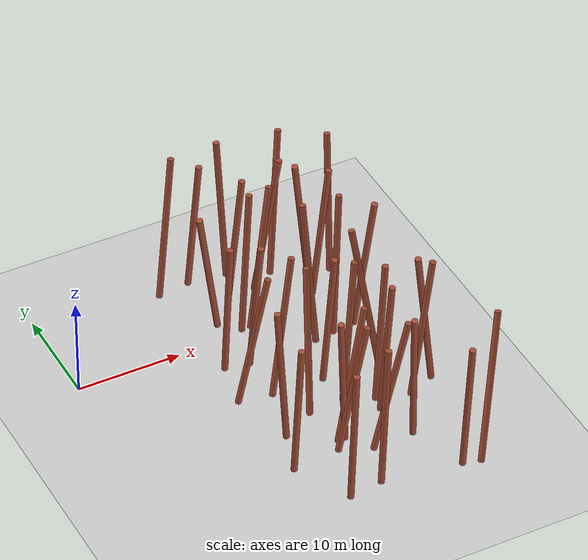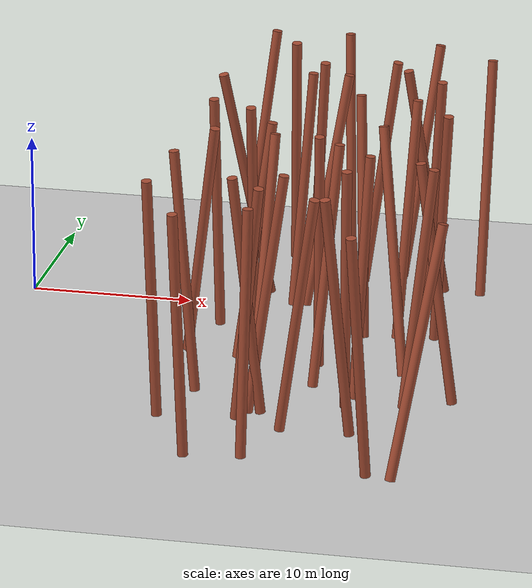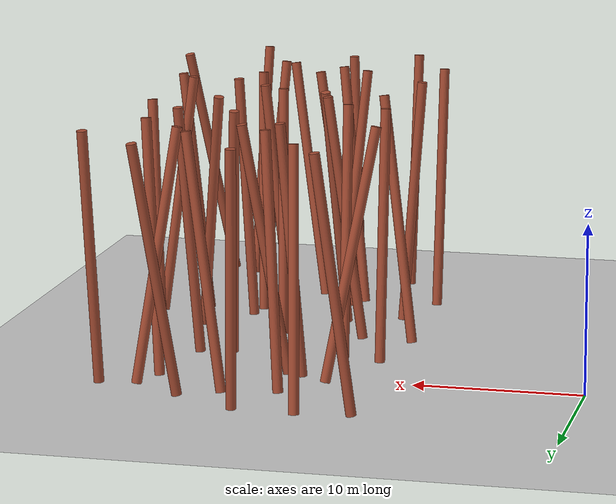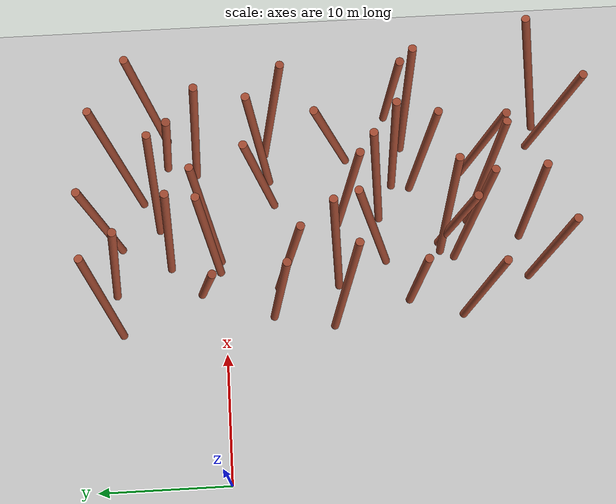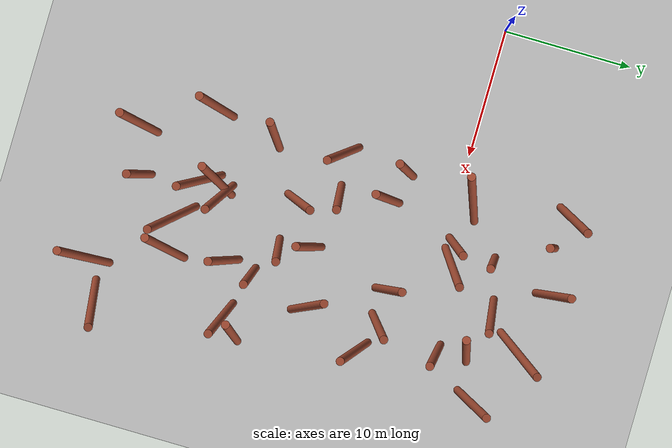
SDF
<sdf version="1.5">
 <world name="default">
  <include><uri>model://sun</uri></include>
  <include><uri>model://ground_plane</uri></include>
  <include><uri>model://asphalt_plane</uri><pose>0 0 -0.000001 0 0 0</pose></include>
  <model name="unit_cylinder_73">
   <pose>12.09966 -18.93497 7.70000 0.09308 -0.00720 0.00000</pose>
   <gravity>0 0 0</gravity>
   <link name="link">
    <inertial>
     <mass>100</mass>
     <inertia><ixx>20</ixx><ixy>0</ixy><ixz>0</ixz><iyy>20</iyy><iyz>0</iyz><izz>20</izz></inertia>
    </inertial>
    <collision name="collision">
     <geometry><cylinder><radius>0.300</radius><length>15.000</length></cylinder></geometry>
    </collision>
    <visual name="visual">
     <geometry><cylinder><radius>0.300</radius><length>15.000</length></cylinder></geometry>
     <material>
      <script><name>Gazebo/Bricks</name><uri>file://media/materials/scripts/gazebo.material</uri></script>
     </material>
    </visual>
    <kinematic>1</kinematic>
   </link>
   <static>0</static>
   <plugin name="dynamic_obstacle_motion_73" filename="libobstaclePathPlugin.so">
    <motion_type>proximity_linear</motion_type>
    <direction>0.674254416 0.738499142 0.000000000</direction>
    <velocity>0.658738524</velocity>
    <activation_distance>20.000000000</activation_distance>
    <activation_model>iris</activation_model>
    <orientation>false</orientation>
    <marker_enabled>true</marker_enabled>
    <marker_id>73</marker_id>
    <marker_radius>0.300000000</marker_radius>
    <marker_height>15.000000000</marker_height>
    <marker_rate>20.0</marker_rate>
    <marker_topic>/uav_simulator/dynamic_obstacles</marker_topic>
    <marker_frame>map</marker_frame>
   </plugin>
  </model>
  <model name="unit_cylinder_74">
   <pose>12.97167 -14.31017 7.70000 0.01713 -0.07211 0.00000</pose>
   <gravity>0 0 0</gravity>
   <link name="link">
    <inertial>
     <mass>100</mass>
     <inertia><ixx>20</ixx><ixy>0</ixy><ixz>0</ixz><iyy>20</iyy><iyz>0</iyz><izz>20</izz></inertia>
    </inertial>
    <collision name="collision">
     <geometry><cylinder><radius>0.300</radius><length>15.000</length></cylinder></geometry>
    </collision>
    <visual name="visual">
     <geometry><cylinder><radius>0.300</radius><length>15.000</length></cylinder></geometry>
     <material>
      <script><name>Gazebo/Bricks</name><uri>file://media/materials/scripts/gazebo.material</uri></script>
     </material>
    </visual>
   </link>
   <static>1</static>
  </model>
  <model name="unit_cylinder_76">
   <pose>12.79724 -9.11853 7.70000 0.10804 0.14224 0.00000</pose>
   <gravity>0 0 0</gravity>
   <link name="link">
    <inertial>
     <mass>100</mass>
     <inertia><ixx>20</ixx><ixy>0</ixy><ixz>0</ixz><iyy>20</iyy><iyz>0</iyz><izz>20</izz></inertia>
    </inertial>
    <collision name="collision">
     <geometry><cylinder><radius>0.300</radius><length>15.000</length></cylinder></geometry>
    </collision>
    <visual name="visual">
     <geometry><cylinder><radius>0.300</radius><length>15.000</length></cylinder></geometry>
     <material>
      <script><name>Gazebo/Bricks</name><uri>file://media/materials/scripts/gazebo.material</uri></script>
     </material>
    </visual>
    <kinematic>1</kinematic>
   </link>
   <static>0</static>
   <plugin name="dynamic_obstacle_motion_76" filename="libobstaclePathPlugin.so">
    <motion_type>proximity_linear</motion_type>
    <direction>-0.961778324 -0.273829244 0.000000000</direction>
    <velocity>0.290994414</velocity>
    <activation_distance>20.000000000</activation_distance>
    <activation_model>iris</activation_model>
    <orientation>false</orientation>
    <marker_enabled>true</marker_enabled>
    <marker_id>76</marker_id>
    <marker_radius>0.300000000</marker_radius>
    <marker_height>15.000000000</marker_height>
    <marker_rate>20.0</marker_rate>
    <marker_topic>/uav_simulator/dynamic_obstacles</marker_topic>
    <marker_frame>map</marker_frame>
   </plugin>
  </model>
  <model name="unit_cylinder_77">
   <pose>12.71789 -4.36831 7.70000 0.08819 -0.00153 0.00000</pose>
   <gravity>0 0 0</gravity>
   <link name="link">
    <inertial>
     <mass>100</mass>
     <inertia><ixx>20</ixx><ixy>0</ixy><ixz>0</ixz><iyy>20</iyy><iyz>0</iyz><izz>20</izz></inertia>
    </inertial>
    <collision name="collision">
     <geometry><cylinder><radius>0.300</radius><length>15.000</length></cylinder></geometry>
    </collision>
    <visual name="visual">
     <geometry><cylinder><radius>0.300</radius><length>15.000</length></cylinder></geometry>
     <material>
      <script><name>Gazebo/Bricks</name><uri>file://media/materials/scripts/gazebo.material</uri></script>
     </material>
    </visual>
    <kinematic>1</kinematic>
   </link>
   <static>0</static>
   <plugin name="dynamic_obstacle_motion_77" filename="libobstaclePathPlugin.so">
    <motion_type>proximity_linear</motion_type>
    <direction>0.446322698 0.894872085 0.000000000</direction>
    <velocity>0.592073534</velocity>
    <activation_distance>20.000000000</activation_distance>
    <activation_model>iris</activation_model>
    <orientation>false</orientation>
    <marker_enabled>true</marker_enabled>
    <marker_id>77</marker_id>
    <marker_radius>0.300000000</marker_radius>
    <marker_height>15.000000000</marker_height>
    <marker_rate>20.0</marker_rate>
    <marker_topic>/uav_simulator/dynamic_obstacles</marker_topic>
    <marker_frame>map</marker_frame>
   </plugin>
  </model>
  <model name="unit_cylinder_78">
   <pose>13.46900 0.86037 7.70000 0.12000 -0.17320 0.00000</pose>
   <gravity>0 0 0</gravity>
   <link name="link">
    <inertial>
     <mass>100</mass>
     <inertia><ixx>20</ixx><ixy>0</ixy><ixz>0</ixz><iyy>20</iyy><iyz>0</iyz><izz>20</izz></inertia>
    </inertial>
    <collision name="collision">
     <geometry><cylinder><radius>0.300</radius><length>15.000</length></cylinder></geometry>
    </collision>
    <visual name="visual">
     <geometry><cylinder><radius>0.300</radius><length>15.000</length></cylinder></geometry>
     <material>
      <script><name>Gazebo/Bricks</name><uri>file://media/materials/scripts/gazebo.material</uri></script>
     </material>
    </visual>
    <kinematic>1</kinematic>
   </link>
   <static>0</static>
   <plugin name="dynamic_obstacle_motion_78" filename="libobstaclePathPlugin.so">
    <motion_type>proximity_linear</motion_type>
    <direction>0.493598340 0.869689990 0.000000000</direction>
    <velocity>0.750630534</velocity>
    <activation_distance>20.000000000</activation_distance>
    <activation_model>iris</activation_model>
    <orientation>false</orientation>
    <marker_enabled>true</marker_enabled>
    <marker_id>78</marker_id>
    <marker_radius>0.300000000</marker_radius>
    <marker_height>15.000000000</marker_height>
    <marker_rate>20.0</marker_rate>
    <marker_topic>/uav_simulator/dynamic_obstacles</marker_topic>
    <marker_frame>map</marker_frame>
   </plugin>
  </model>
  <model name="unit_cylinder_80">
   <pose>12.77865 8.30049 7.70000 -0.06051 0.12447 0.00000</pose>
   <gravity>0 0 0</gravity>
   <link name="link">
    <inertial>
     <mass>100</mass>
     <inertia><ixx>20</ixx><ixy>0</ixy><ixz>0</ixz><iyy>20</iyy><iyz>0</iyz><izz>20</izz></inertia>
    </inertial>
    <collision name="collision">
     <geometry><cylinder><radius>0.300</radius><length>15.000</length></cylinder></geometry>
    </collision>
    <visual name="visual">
     <geometry><cylinder><radius>0.300</radius><length>15.000</length></cylinder></geometry>
     <material>
      <script><name>Gazebo/Bricks</name><uri>file://media/materials/scripts/gazebo.material</uri></script>
     </material>
    </visual>
    <kinematic>1</kinematic>
   </link>
   <static>0</static>
   <plugin name="dynamic_obstacle_motion_80" filename="libobstaclePathPlugin.so">
    <motion_type>proximity_linear</motion_type>
    <direction>-0.624898909 0.780705677 0.000000000</direction>
    <velocity>1.326812384</velocity>
    <activation_distance>20.000000000</activation_distance>
    <activation_model>iris</activation_model>
    <orientation>false</orientation>
    <marker_enabled>true</marker_enabled>
    <marker_id>80</marker_id>
    <marker_radius>0.300000000</marker_radius>
    <marker_height>15.000000000</marker_height>
    <marker_rate>20.0</marker_rate>
    <marker_topic>/uav_simulator/dynamic_obstacles</marker_topic>
    <marker_frame>map</marker_frame>
   </plugin>
  </model>
  <model name="unit_cylinder_87">
   <pose>14.80580 -24.05270 7.70000 0.07194 -0.01697 0.00000</pose>
   <gravity>0 0 0</gravity>
   <link name="link">
    <inertial>
     <mass>100</mass>
     <inertia><ixx>20</ixx><ixy>0</ixy><ixz>0</ixz><iyy>20</iyy><iyz>0</iyz><izz>20</izz></inertia>
    </inertial>
    <collision name="collision">
     <geometry><cylinder><radius>0.300</radius><length>15.000</length></cylinder></geometry>
    </collision>
    <visual name="visual">
     <geometry><cylinder><radius>0.300</radius><length>15.000</length></cylinder></geometry>
     <material>
      <script><name>Gazebo/Bricks</name><uri>file://media/materials/scripts/gazebo.material</uri></script>
     </material>
    </visual>
    <kinematic>1</kinematic>
   </link>
   <static>0</static>
   <plugin name="dynamic_obstacle_motion_87" filename="libobstaclePathPlugin.so">
    <motion_type>proximity_linear</motion_type>
    <direction>0.529764277 0.848144923 0.000000000</direction>
    <velocity>0.647044066</velocity>
    <activation_distance>20.000000000</activation_distance>
    <activation_model>iris</activation_model>
    <orientation>false</orientation>
    <marker_enabled>true</marker_enabled>
    <marker_id>87</marker_id>
    <marker_radius>0.300000000</marker_radius>
    <marker_height>15.000000000</marker_height>
    <marker_rate>20.0</marker_rate>
    <marker_topic>/uav_simulator/dynamic_obstacles</marker_topic>
    <marker_frame>map</marker_frame>
   </plugin>
  </model>
  <model name="unit_cylinder_88">
   <pose>17.60694 -18.64400 7.70000 0.10522 0.11654 0.00000</pose>
   <gravity>0 0 0</gravity>
   <link name="link">
    <inertial>
     <mass>100</mass>
     <inertia><ixx>20</ixx><ixy>0</ixy><ixz>0</ixz><iyy>20</iyy><iyz>0</iyz><izz>20</izz></inertia>
    </inertial>
    <collision name="collision">
     <geometry><cylinder><radius>0.300</radius><length>15.000</length></cylinder></geometry>
    </collision>
    <visual name="visual">
     <geometry><cylinder><radius>0.300</radius><length>15.000</length></cylinder></geometry>
     <material>
      <script><name>Gazebo/Bricks</name><uri>file://media/materials/scripts/gazebo.material</uri></script>
     </material>
    </visual>
    <kinematic>1</kinematic>
   </link>
   <static>0</static>
   <plugin name="dynamic_obstacle_motion_88" filename="libobstaclePathPlugin.so">
    <motion_type>proximity_linear</motion_type>
    <direction>0.181890316 0.983318826 0.000000000</direction>
    <velocity>0.464193147</velocity>
    <activation_distance>20.000000000</activation_distance>
    <activation_model>iris</activation_model>
    <orientation>false</orientation>
    <marker_enabled>true</marker_enabled>
    <marker_id>88</marker_id>
    <marker_radius>0.300000000</marker_radius>
    <marker_height>15.000000000</marker_height>
    <marker_rate>20.0</marker_rate>
    <marker_topic>/uav_simulator/dynamic_obstacles</marker_topic>
    <marker_frame>map</marker_frame>
   </plugin>
  </model>
  <model name="unit_cylinder_89">
   <pose>17.32578 -17.40756 7.70000 0.09221 -0.08966 0.00000</pose>
   <gravity>0 0 0</gravity>
   <link name="link">
    <inertial>
     <mass>100</mass>
     <inertia><ixx>20</ixx><ixy>0</ixy><ixz>0</ixz><iyy>20</iyy><iyz>0</iyz><izz>20</izz></inertia>
    </inertial>
    <collision name="collision">
     <geometry><cylinder><radius>0.300</radius><length>15.000</length></cylinder></geometry>
    </collision>
    <visual name="visual">
     <geometry><cylinder><radius>0.300</radius><length>15.000</length></cylinder></geometry>
     <material>
      <script><name>Gazebo/Bricks</name><uri>file://media/materials/scripts/gazebo.material</uri></script>
     </material>
    </visual>
    <kinematic>1</kinematic>
   </link>
   <static>0</static>
   <plugin name="dynamic_obstacle_motion_89" filename="libobstaclePathPlugin.so">
    <motion_type>proximity_linear</motion_type>
    <direction>-0.979266794 -0.202574793 0.000000000</direction>
    <velocity>1.444949437</velocity>
    <activation_distance>20.000000000</activation_distance>
    <activation_model>iris</activation_model>
    <orientation>false</orientation>
    <marker_enabled>true</marker_enabled>
    <marker_id>89</marker_id>
    <marker_radius>0.300000000</marker_radius>
    <marker_height>15.000000000</marker_height>
    <marker_rate>20.0</marker_rate>
    <marker_topic>/uav_simulator/dynamic_obstacles</marker_topic>
    <marker_frame>map</marker_frame>
   </plugin>
  </model>
  <model name="unit_cylinder_90">
   <pose>17.09607 -11.33307 7.70000 -0.16598 0.05524 0.00000</pose>
   <gravity>0 0 0</gravity>
   <link name="link">
    <inertial>
     <mass>100</mass>
     <inertia><ixx>20</ixx><ixy>0</ixy><ixz>0</ixz><iyy>20</iyy><iyz>0</iyz><izz>20</izz></inertia>
    </inertial>
    <collision name="collision">
     <geometry><cylinder><radius>0.300</radius><length>15.000</length></cylinder></geometry>
    </collision>
    <visual name="visual">
     <geometry><cylinder><radius>0.300</radius><length>15.000</length></cylinder></geometry>
     <material>
      <script><name>Gazebo/Bricks</name><uri>file://media/materials/scripts/gazebo.material</uri></script>
     </material>
    </visual>
    <kinematic>1</kinematic>
   </link>
   <static>0</static>
   <plugin name="dynamic_obstacle_motion_90" filename="libobstaclePathPlugin.so">
    <motion_type>proximity_linear</motion_type>
    <direction>-0.978038207 -0.208425683 0.000000000</direction>
    <velocity>0.686507719</velocity>
    <activation_distance>20.000000000</activation_distance>
    <activation_model>iris</activation_model>
    <orientation>false</orientation>
    <marker_enabled>true</marker_enabled>
    <marker_id>90</marker_id>
    <marker_radius>0.300000000</marker_radius>
    <marker_height>15.000000000</marker_height>
    <marker_rate>20.0</marker_rate>
    <marker_topic>/uav_simulator/dynamic_obstacles</marker_topic>
    <marker_frame>map</marker_frame>
   </plugin>
  </model>
  <model name="unit_cylinder_91">
   <pose>15.93196 -8.58486 7.70000 -0.03098 0.13762 0.00000</pose>
   <gravity>0 0 0</gravity>
   <link name="link">
    <inertial>
     <mass>100</mass>
     <inertia><ixx>20</ixx><ixy>0</ixy><ixz>0</ixz><iyy>20</iyy><iyz>0</iyz><izz>20</izz></inertia>
    </inertial>
    <collision name="collision">
     <geometry><cylinder><radius>0.300</radius><length>15.000</length></cylinder></geometry>
    </collision>
    <visual name="visual">
     <geometry><cylinder><radius>0.300</radius><length>15.000</length></cylinder></geometry>
     <material>
      <script><name>Gazebo/Bricks</name><uri>file://media/materials/scripts/gazebo.material</uri></script>
     </material>
    </visual>
    <kinematic>1</kinematic>
   </link>
   <static>0</static>
   <plugin name="dynamic_obstacle_motion_91" filename="libobstaclePathPlugin.so">
    <motion_type>proximity_linear</motion_type>
    <direction>0.952631086 -0.304128286 -0.000000000</direction>
    <velocity>0.323877502</velocity>
    <activation_distance>20.000000000</activation_distance>
    <activation_model>iris</activation_model>
    <orientation>false</orientation>
    <marker_enabled>true</marker_enabled>
    <marker_id>91</marker_id>
    <marker_radius>0.300000000</marker_radius>
    <marker_height>15.000000000</marker_height>
    <marker_rate>20.0</marker_rate>
    <marker_topic>/uav_simulator/dynamic_obstacles</marker_topic>
    <marker_frame>map</marker_frame>
   </plugin>
  </model>
  <model name="unit_cylinder_92">
   <pose>15.09007 -5.10361 7.70000 0.12561 0.01178 0.00000</pose>
   <gravity>0 0 0</gravity>
   <link name="link">
    <inertial>
     <mass>100</mass>
     <inertia><ixx>20</ixx><ixy>0</ixy><ixz>0</ixz><iyy>20</iyy><iyz>0</iyz><izz>20</izz></inertia>
    </inertial>
    <collision name="collision">
     <geometry><cylinder><radius>0.300</radius><length>15.000</length></cylinder></geometry>
    </collision>
    <visual name="visual">
     <geometry><cylinder><radius>0.300</radius><length>15.000</length></cylinder></geometry>
     <material>
      <script><name>Gazebo/Bricks</name><uri>file://media/materials/scripts/gazebo.material</uri></script>
     </material>
    </visual>
   </link>
   <static>1</static>
  </model>
  <model name="unit_cylinder_93">
   <pose>17.02639 0.59432 7.70000 -0.04278 0.07435 0.00000</pose>
   <gravity>0 0 0</gravity>
   <link name="link">
    <inertial>
     <mass>100</mass>
     <inertia><ixx>20</ixx><ixy>0</ixy><ixz>0</ixz><iyy>20</iyy><iyz>0</iyz><izz>20</izz></inertia>
    </inertial>
    <collision name="collision">
     <geometry><cylinder><radius>0.300</radius><length>15.000</length></cylinder></geometry>
    </collision>
    <visual name="visual">
     <geometry><cylinder><radius>0.300</radius><length>15.000</length></cylinder></geometry>
     <material>
      <script><name>Gazebo/Bricks</name><uri>file://media/materials/scripts/gazebo.material</uri></script>
     </material>
    </visual>
    <kinematic>1</kinematic>
   </link>
   <static>0</static>
   <plugin name="dynamic_obstacle_motion_93" filename="libobstaclePathPlugin.so">
    <motion_type>proximity_linear</motion_type>
    <direction>-0.190556249 -0.981676279 0.000000000</direction>
    <velocity>1.183318838</velocity>
    <activation_distance>20.000000000</activation_distance>
    <activation_model>iris</activation_model>
    <orientation>false</orientation>
    <marker_enabled>true</marker_enabled>
    <marker_id>93</marker_id>
    <marker_radius>0.300000000</marker_radius>
    <marker_height>15.000000000</marker_height>
    <marker_rate>20.0</marker_rate>
    <marker_topic>/uav_simulator/dynamic_obstacles</marker_topic>
    <marker_frame>map</marker_frame>
   </plugin>
  </model>
  <model name="unit_cylinder_94">
   <pose>17.44000 3.53359 7.70000 0.07308 0.06363 0.00000</pose>
   <gravity>0 0 0</gravity>
   <link name="link">
    <inertial>
     <mass>100</mass>
     <inertia><ixx>20</ixx><ixy>0</ixy><ixz>0</ixz><iyy>20</iyy><iyz>0</iyz><izz>20</izz></inertia>
    </inertial>
    <collision name="collision">
     <geometry><cylinder><radius>0.300</radius><length>15.000</length></cylinder></geometry>
    </collision>
    <visual name="visual">
     <geometry><cylinder><radius>0.300</radius><length>15.000</length></cylinder></geometry>
     <material>
      <script><name>Gazebo/Bricks</name><uri>file://media/materials/scripts/gazebo.material</uri></script>
     </material>
    </visual>
    <kinematic>1</kinematic>
   </link>
   <static>0</static>
   <plugin name="dynamic_obstacle_motion_94" filename="libobstaclePathPlugin.so">
    <motion_type>proximity_linear</motion_type>
    <direction>-0.257995109 -0.966146223 0.000000000</direction>
    <velocity>0.736311601</velocity>
    <activation_distance>20.000000000</activation_distance>
    <activation_model>iris</activation_model>
    <orientation>false</orientation>
    <marker_enabled>true</marker_enabled>
    <marker_id>94</marker_id>
    <marker_radius>0.300000000</marker_radius>
    <marker_height>15.000000000</marker_height>
    <marker_rate>20.0</marker_rate>
    <marker_topic>/uav_simulator/dynamic_obstacles</marker_topic>
    <marker_frame>map</marker_frame>
   </plugin>
  </model>
  <model name="unit_cylinder_95">
   <pose>15.20484 7.42165 7.70000 0.11953 0.02699 0.00000</pose>
   <gravity>0 0 0</gravity>
   <link name="link">
    <inertial>
     <mass>100</mass>
     <inertia><ixx>20</ixx><ixy>0</ixy><ixz>0</ixz><iyy>20</iyy><iyz>0</iyz><izz>20</izz></inertia>
    </inertial>
    <collision name="collision">
     <geometry><cylinder><radius>0.300</radius><length>15.000</length></cylinder></geometry>
    </collision>
    <visual name="visual">
     <geometry><cylinder><radius>0.300</radius><length>15.000</length></cylinder></geometry>
     <material>
      <script><name>Gazebo/Bricks</name><uri>file://media/materials/scripts/gazebo.material</uri></script>
     </material>
    </visual>
    <kinematic>1</kinematic>
   </link>
   <static>0</static>
   <plugin name="dynamic_obstacle_motion_95" filename="libobstaclePathPlugin.so">
    <motion_type>proximity_linear</motion_type>
    <direction>0.271764175 -0.962363878 0.000000000</direction>
    <velocity>1.936320298</velocity>
    <activation_distance>20.000000000</activation_distance>
    <activation_model>iris</activation_model>
    <orientation>false</orientation>
    <marker_enabled>true</marker_enabled>
    <marker_id>95</marker_id>
    <marker_radius>0.300000000</marker_radius>
    <marker_height>15.000000000</marker_height>
    <marker_rate>20.0</marker_rate>
    <marker_topic>/uav_simulator/dynamic_obstacles</marker_topic>
    <marker_frame>map</marker_frame>
   </plugin>
  </model>
  <model name="unit_cylinder_102">
   <pose>18.39644 -23.01656 7.70000 -0.00865 0.02880 0.00000</pose>
   <gravity>0 0 0</gravity>
   <link name="link">
    <inertial>
     <mass>100</mass>
     <inertia><ixx>20</ixx><ixy>0</ixy><ixz>0</ixz><iyy>20</iyy><iyz>0</iyz><izz>20</izz></inertia>
    </inertial>
    <collision name="collision">
     <geometry><cylinder><radius>0.300</radius><length>15.000</length></cylinder></geometry>
    </collision>
    <visual name="visual">
     <geometry><cylinder><radius>0.300</radius><length>15.000</length></cylinder></geometry>
     <material>
      <script><name>Gazebo/Bricks</name><uri>file://media/materials/scripts/gazebo.material</uri></script>
     </material>
    </visual>
    <kinematic>1</kinematic>
   </link>
   <static>0</static>
   <plugin name="dynamic_obstacle_motion_102" filename="libobstaclePathPlugin.so">
    <motion_type>proximity_linear</motion_type>
    <direction>-0.041558972 0.999136053 0.000000000</direction>
    <velocity>1.684338092</velocity>
    <activation_distance>20.000000000</activation_distance>
    <activation_model>iris</activation_model>
    <orientation>false</orientation>
    <marker_enabled>true</marker_enabled>
    <marker_id>102</marker_id>
    <marker_radius>0.300000000</marker_radius>
    <marker_height>15.000000000</marker_height>
    <marker_rate>20.0</marker_rate>
    <marker_topic>/uav_simulator/dynamic_obstacles</marker_topic>
    <marker_frame>map</marker_frame>
   </plugin>
  </model>
  <model name="unit_cylinder_103">
   <pose>20.74535 -19.80676 7.70000 0.09419 0.15393 0.00000</pose>
   <gravity>0 0 0</gravity>
   <link name="link">
    <inertial>
     <mass>100</mass>
     <inertia><ixx>20</ixx><ixy>0</ixy><ixz>0</ixz><iyy>20</iyy><iyz>0</iyz><izz>20</izz></inertia>
    </inertial>
    <collision name="collision">
     <geometry><cylinder><radius>0.300</radius><length>15.000</length></cylinder></geometry>
    </collision>
    <visual name="visual">
     <geometry><cylinder><radius>0.300</radius><length>15.000</length></cylinder></geometry>
     <material>
      <script><name>Gazebo/Bricks</name><uri>file://media/materials/scripts/gazebo.material</uri></script>
     </material>
    </visual>
   </link>
   <static>1</static>
  </model>
  <model name="unit_cylinder_104">
   <pose>18.35437 -16.94366 7.70000 0.01767 0.14717 0.00000</pose>
   <gravity>0 0 0</gravity>
   <link name="link">
    <inertial>
     <mass>100</mass>
     <inertia><ixx>20</ixx><ixy>0</ixy><ixz>0</ixz><iyy>20</iyy><iyz>0</iyz><izz>20</izz></inertia>
    </inertial>
    <collision name="collision">
     <geometry><cylinder><radius>0.300</radius><length>15.000</length></cylinder></geometry>
    </collision>
    <visual name="visual">
     <geometry><cylinder><radius>0.300</radius><length>15.000</length></cylinder></geometry>
     <material>
      <script><name>Gazebo/Bricks</name><uri>file://media/materials/scripts/gazebo.material</uri></script>
     </material>
    </visual>
   </link>
   <static>1</static>
  </model>
  <model name="unit_cylinder_105">
   <pose>20.87703 -11.80366 7.70000 -0.05705 0.09227 0.00000</pose>
   <gravity>0 0 0</gravity>
   <link name="link">
    <inertial>
     <mass>100</mass>
     <inertia><ixx>20</ixx><ixy>0</ixy><ixz>0</ixz><iyy>20</iyy><iyz>0</iyz><izz>20</izz></inertia>
    </inertial>
    <collision name="collision">
     <geometry><cylinder><radius>0.300</radius><length>15.000</length></cylinder></geometry>
    </collision>
    <visual name="visual">
     <geometry><cylinder><radius>0.300</radius><length>15.000</length></cylinder></geometry>
     <material>
      <script><name>Gazebo/Bricks</name><uri>file://media/materials/scripts/gazebo.material</uri></script>
     </material>
    </visual>
   </link>
   <static>1</static>
  </model>
  <model name="unit_cylinder_106">
   <pose>20.04338 -9.65870 7.70000 0.09206 0.01790 0.00000</pose>
   <gravity>0 0 0</gravity>
   <link name="link">
    <inertial>
     <mass>100</mass>
     <inertia><ixx>20</ixx><ixy>0</ixy><ixz>0</ixz><iyy>20</iyy><iyz>0</iyz><izz>20</izz></inertia>
    </inertial>
    <collision name="collision">
     <geometry><cylinder><radius>0.300</radius><length>15.000</length></cylinder></geometry>
    </collision>
    <visual name="visual">
     <geometry><cylinder><radius>0.300</radius><length>15.000</length></cylinder></geometry>
     <material>
      <script><name>Gazebo/Bricks</name><uri>file://media/materials/scripts/gazebo.material</uri></script>
     </material>
    </visual>
    <kinematic>1</kinematic>
   </link>
   <static>0</static>
   <plugin name="dynamic_obstacle_motion_106" filename="libobstaclePathPlugin.so">
    <motion_type>proximity_linear</motion_type>
    <direction>0.999427370 0.033836846 0.000000000</direction>
    <velocity>0.728988767</velocity>
    <activation_distance>20.000000000</activation_distance>
    <activation_model>iris</activation_model>
    <orientation>false</orientation>
    <marker_enabled>true</marker_enabled>
    <marker_id>106</marker_id>
    <marker_radius>0.300000000</marker_radius>
    <marker_height>15.000000000</marker_height>
    <marker_rate>20.0</marker_rate>
    <marker_topic>/uav_simulator/dynamic_obstacles</marker_topic>
    <marker_frame>map</marker_frame>
   </plugin>
  </model>
  <model name="unit_cylinder_107">
   <pose>21.45895 -3.27582 7.70000 -0.11387 -0.03972 0.00000</pose>
   <gravity>0 0 0</gravity>
   <link name="link">
    <inertial>
     <mass>100</mass>
     <inertia><ixx>20</ixx><ixy>0</ixy><ixz>0</ixz><iyy>20</iyy><iyz>0</iyz><izz>20</izz></inertia>
    </inertial>
    <collision name="collision">
     <geometry><cylinder><radius>0.300</radius><length>15.000</length></cylinder></geometry>
    </collision>
    <visual name="visual">
     <geometry><cylinder><radius>0.300</radius><length>15.000</length></cylinder></geometry>
     <material>
      <script><name>Gazebo/Bricks</name><uri>file://media/materials/scripts/gazebo.material</uri></script>
     </material>
    </visual>
    <kinematic>1</kinematic>
   </link>
   <static>0</static>
   <plugin name="dynamic_obstacle_motion_107" filename="libobstaclePathPlugin.so">
    <motion_type>proximity_linear</motion_type>
    <direction>-0.992064868 -0.125727076 -0.000000000</direction>
    <velocity>1.813815928</velocity>
    <activation_distance>20.000000000</activation_distance>
    <activation_model>iris</activation_model>
    <orientation>false</orientation>
    <marker_enabled>true</marker_enabled>
    <marker_id>107</marker_id>
    <marker_radius>0.300000000</marker_radius>
    <marker_height>15.000000000</marker_height>
    <marker_rate>20.0</marker_rate>
    <marker_topic>/uav_simulator/dynamic_obstacles</marker_topic>
    <marker_frame>map</marker_frame>
   </plugin>
  </model>
  <model name="unit_cylinder_108">
   <pose>18.52468 0.73695 7.70000 -0.07301 0.16297 0.00000</pose>
   <gravity>0 0 0</gravity>
   <link name="link">
    <inertial>
     <mass>100</mass>
     <inertia><ixx>20</ixx><ixy>0</ixy><ixz>0</ixz><iyy>20</iyy><iyz>0</iyz><izz>20</izz></inertia>
    </inertial>
    <collision name="collision">
     <geometry><cylinder><radius>0.300</radius><length>15.000</length></cylinder></geometry>
    </collision>
    <visual name="visual">
     <geometry><cylinder><radius>0.300</radius><length>15.000</length></cylinder></geometry>
     <material>
      <script><name>Gazebo/Bricks</name><uri>file://media/materials/scripts/gazebo.material</uri></script>
     </material>
    </visual>
   </link>
   <static>1</static>
  </model>
  <model name="unit_cylinder_109">
   <pose>21.16048 4.49655 7.70000 0.05048 0.14278 0.00000</pose>
   <gravity>0 0 0</gravity>
   <link name="link">
    <inertial>
     <mass>100</mass>
     <inertia><ixx>20</ixx><ixy>0</ixy><ixz>0</ixz><iyy>20</iyy><iyz>0</iyz><izz>20</izz></inertia>
    </inertial>
    <collision name="collision">
     <geometry><cylinder><radius>0.300</radius><length>15.000</length></cylinder></geometry>
    </collision>
    <visual name="visual">
     <geometry><cylinder><radius>0.300</radius><length>15.000</length></cylinder></geometry>
     <material>
      <script><name>Gazebo/Bricks</name><uri>file://media/materials/scripts/gazebo.material</uri></script>
     </material>
    </visual>
    <kinematic>1</kinematic>
   </link>
   <static>0</static>
   <plugin name="dynamic_obstacle_motion_109" filename="libobstaclePathPlugin.so">
    <motion_type>proximity_linear</motion_type>
    <direction>-0.422332210 0.906441120 -0.000000000</direction>
    <velocity>1.669093566</velocity>
    <activation_distance>20.000000000</activation_distance>
    <activation_model>iris</activation_model>
    <orientation>false</orientation>
    <marker_enabled>true</marker_enabled>
    <marker_id>109</marker_id>
    <marker_radius>0.300000000</marker_radius>
    <marker_height>15.000000000</marker_height>
    <marker_rate>20.0</marker_rate>
    <marker_topic>/uav_simulator/dynamic_obstacles</marker_topic>
    <marker_frame>map</marker_frame>
   </plugin>
  </model>
  <model name="unit_cylinder_110">
   <pose>18.52675 8.37855 7.70000 -0.07115 -0.02480 0.00000</pose>
   <gravity>0 0 0</gravity>
   <link name="link">
    <inertial>
     <mass>100</mass>
     <inertia><ixx>20</ixx><ixy>0</ixy><ixz>0</ixz><iyy>20</iyy><iyz>0</iyz><izz>20</izz></inertia>
    </inertial>
    <collision name="collision">
     <geometry><cylinder><radius>0.300</radius><length>15.000</length></cylinder></geometry>
    </collision>
    <visual name="visual">
     <geometry><cylinder><radius>0.300</radius><length>15.000</length></cylinder></geometry>
     <material>
      <script><name>Gazebo/Bricks</name><uri>file://media/materials/scripts/gazebo.material</uri></script>
     </material>
    </visual>
   </link>
   <static>1</static>
  </model>
  <model name="unit_cylinder_117">
   <pose>25.31960 -25.18317 7.70000 0.11878 -0.03919 0.00000</pose>
   <gravity>0 0 0</gravity>
   <link name="link">
    <inertial>
     <mass>100</mass>
     <inertia><ixx>20</ixx><ixy>0</ixy><ixz>0</ixz><iyy>20</iyy><iyz>0</iyz><izz>20</izz></inertia>
    </inertial>
    <collision name="collision">
     <geometry><cylinder><radius>0.300</radius><length>15.000</length></cylinder></geometry>
    </collision>
    <visual name="visual">
     <geometry><cylinder><radius>0.300</radius><length>15.000</length></cylinder></geometry>
     <material>
      <script><name>Gazebo/Bricks</name><uri>file://media/materials/scripts/gazebo.material</uri></script>
     </material>
    </visual>
    <kinematic>1</kinematic>
   </link>
   <static>0</static>
   <plugin name="dynamic_obstacle_motion_117" filename="libobstaclePathPlugin.so">
    <motion_type>proximity_linear</motion_type>
    <direction>0.328558478 0.944483630 0.000000000</direction>
    <velocity>0.636086381</velocity>
    <activation_distance>20.000000000</activation_distance>
    <activation_model>iris</activation_model>
    <orientation>false</orientation>
    <marker_enabled>true</marker_enabled>
    <marker_id>117</marker_id>
    <marker_radius>0.300000000</marker_radius>
    <marker_height>15.000000000</marker_height>
    <marker_rate>20.0</marker_rate>
    <marker_topic>/uav_simulator/dynamic_obstacles</marker_topic>
    <marker_frame>map</marker_frame>
   </plugin>
  </model>
  <model name="unit_cylinder_118">
   <pose>23.06796 -19.69413 7.70000 0.10968 -0.07779 0.00000</pose>
   <gravity>0 0 0</gravity>
   <link name="link">
    <inertial>
     <mass>100</mass>
     <inertia><ixx>20</ixx><ixy>0</ixy><ixz>0</ixz><iyy>20</iyy><iyz>0</iyz><izz>20</izz></inertia>
    </inertial>
    <collision name="collision">
     <geometry><cylinder><radius>0.300</radius><length>15.000</length></cylinder></geometry>
    </collision>
    <visual name="visual">
     <geometry><cylinder><radius>0.300</radius><length>15.000</length></cylinder></geometry>
     <material>
      <script><name>Gazebo/Bricks</name><uri>file://media/materials/scripts/gazebo.material</uri></script>
     </material>
    </visual>
    <kinematic>1</kinematic>
   </link>
   <static>0</static>
   <plugin name="dynamic_obstacle_motion_118" filename="libobstaclePathPlugin.so">
    <motion_type>proximity_linear</motion_type>
    <direction>-0.235018357 -0.971990932 0.000000000</direction>
    <velocity>0.508738641</velocity>
    <activation_distance>20.000000000</activation_distance>
    <activation_model>iris</activation_model>
    <orientation>false</orientation>
    <marker_enabled>true</marker_enabled>
    <marker_id>118</marker_id>
    <marker_radius>0.300000000</marker_radius>
    <marker_height>15.000000000</marker_height>
    <marker_rate>20.0</marker_rate>
    <marker_topic>/uav_simulator/dynamic_obstacles</marker_topic>
    <marker_frame>map</marker_frame>
   </plugin>
  </model>
  <model name="unit_cylinder_119">
   <pose>22.72349 -15.33287 7.70000 0.07195 0.01587 0.00000</pose>
   <gravity>0 0 0</gravity>
   <link name="link">
    <inertial>
     <mass>100</mass>
     <inertia><ixx>20</ixx><ixy>0</ixy><ixz>0</ixz><iyy>20</iyy><iyz>0</iyz><izz>20</izz></inertia>
    </inertial>
    <collision name="collision">
     <geometry><cylinder><radius>0.300</radius><length>15.000</length></cylinder></geometry>
    </collision>
    <visual name="visual">
     <geometry><cylinder><radius>0.300</radius><length>15.000</length></cylinder></geometry>
     <material>
      <script><name>Gazebo/Bricks</name><uri>file://media/materials/scripts/gazebo.material</uri></script>
     </material>
    </visual>
    <kinematic>1</kinematic>
   </link>
   <static>0</static>
   <plugin name="dynamic_obstacle_motion_119" filename="libobstaclePathPlugin.so">
    <motion_type>proximity_linear</motion_type>
    <direction>0.583099005 0.812401102 0.000000000</direction>
    <velocity>0.309613423</velocity>
    <activation_distance>20.000000000</activation_distance>
    <activation_model>iris</activation_model>
    <orientation>false</orientation>
    <marker_enabled>true</marker_enabled>
    <marker_id>119</marker_id>
    <marker_radius>0.300000000</marker_radius>
    <marker_height>15.000000000</marker_height>
    <marker_rate>20.0</marker_rate>
    <marker_topic>/uav_simulator/dynamic_obstacles</marker_topic>
    <marker_frame>map</marker_frame>
   </plugin>
  </model>
  <model name="unit_cylinder_120">
   <pose>23.28032 -13.23575 7.70000 -0.02091 0.05461 0.00000</pose>
   <gravity>0 0 0</gravity>
   <link name="link">
    <inertial>
     <mass>100</mass>
     <inertia><ixx>20</ixx><ixy>0</ixy><ixz>0</ixz><iyy>20</iyy><iyz>0</iyz><izz>20</izz></inertia>
    </inertial>
    <collision name="collision">
     <geometry><cylinder><radius>0.300</radius><length>15.000</length></cylinder></geometry>
    </collision>
    <visual name="visual">
     <geometry><cylinder><radius>0.300</radius><length>15.000</length></cylinder></geometry>
     <material>
      <script><name>Gazebo/Bricks</name><uri>file://media/materials/scripts/gazebo.material</uri></script>
     </material>
    </visual>
   </link>
   <static>1</static>
  </model>
  <model name="unit_cylinder_121">
   <pose>24.29282 -8.63717 7.70000 -0.16986 -0.11783 0.00000</pose>
   <gravity>0 0 0</gravity>
   <link name="link">
    <inertial>
     <mass>100</mass>
     <inertia><ixx>20</ixx><ixy>0</ixy><ixz>0</ixz><iyy>20</iyy><iyz>0</iyz><izz>20</izz></inertia>
    </inertial>
    <collision name="collision">
     <geometry><cylinder><radius>0.300</radius><length>15.000</length></cylinder></geometry>
    </collision>
    <visual name="visual">
     <geometry><cylinder><radius>0.300</radius><length>15.000</length></cylinder></geometry>
     <material>
      <script><name>Gazebo/Bricks</name><uri>file://media/materials/scripts/gazebo.material</uri></script>
     </material>
    </visual>
   </link>
   <static>1</static>
  </model>
  <model name="unit_cylinder_122">
   <pose>24.18391 -3.26588 7.70000 -0.07197 0.06303 0.00000</pose>
   <gravity>0 0 0</gravity>
   <link name="link">
    <inertial>
     <mass>100</mass>
     <inertia><ixx>20</ixx><ixy>0</ixy><ixz>0</ixz><iyy>20</iyy><iyz>0</iyz><izz>20</izz></inertia>
    </inertial>
    <collision name="collision">
     <geometry><cylinder><radius>0.300</radius><length>15.000</length></cylinder></geometry>
    </collision>
    <visual name="visual">
     <geometry><cylinder><radius>0.300</radius><length>15.000</length></cylinder></geometry>
     <material>
      <script><name>Gazebo/Bricks</name><uri>file://media/materials/scripts/gazebo.material</uri></script>
     </material>
    </visual>
   </link>
   <static>1</static>
  </model>
  <model name="unit_cylinder_123">
   <pose>25.05302 1.36377 7.70000 0.07199 0.06310 0.00000</pose>
   <gravity>0 0 0</gravity>
   <link name="link">
    <inertial>
     <mass>100</mass>
     <inertia><ixx>20</ixx><ixy>0</ixy><ixz>0</ixz><iyy>20</iyy><iyz>0</iyz><izz>20</izz></inertia>
    </inertial>
    <collision name="collision">
     <geometry><cylinder><radius>0.300</radius><length>15.000</length></cylinder></geometry>
    </collision>
    <visual name="visual">
     <geometry><cylinder><radius>0.300</radius><length>15.000</length></cylinder></geometry>
     <material>
      <script><name>Gazebo/Bricks</name><uri>file://media/materials/scripts/gazebo.material</uri></script>
     </material>
    </visual>
    <kinematic>1</kinematic>
   </link>
   <static>0</static>
   <plugin name="dynamic_obstacle_motion_123" filename="libobstaclePathPlugin.so">
    <motion_type>proximity_linear</motion_type>
    <direction>-0.576945371 0.816782737 0.000000000</direction>
    <velocity>1.961485269</velocity>
    <activation_distance>20.000000000</activation_distance>
    <activation_model>iris</activation_model>
    <orientation>false</orientation>
    <marker_enabled>true</marker_enabled>
    <marker_id>123</marker_id>
    <marker_radius>0.300000000</marker_radius>
    <marker_height>15.000000000</marker_height>
    <marker_rate>20.0</marker_rate>
    <marker_topic>/uav_simulator/dynamic_obstacles</marker_topic>
    <marker_frame>map</marker_frame>
   </plugin>
  </model>
  <model name="unit_cylinder_124">
   <pose>24.20562 3.46193 7.70000 0.09342 -0.14676 0.00000</pose>
   <gravity>0 0 0</gravity>
   <link name="link">
    <inertial>
     <mass>100</mass>
     <inertia><ixx>20</ixx><ixy>0</ixy><ixz>0</ixz><iyy>20</iyy><iyz>0</iyz><izz>20</izz></inertia>
    </inertial>
    <collision name="collision">
     <geometry><cylinder><radius>0.300</radius><length>15.000</length></cylinder></geometry>
    </collision>
    <visual name="visual">
     <geometry><cylinder><radius>0.300</radius><length>15.000</length></cylinder></geometry>
     <material>
      <script><name>Gazebo/Bricks</name><uri>file://media/materials/scripts/gazebo.material</uri></script>
     </material>
    </visual>
    <kinematic>1</kinematic>
   </link>
   <static>0</static>
   <plugin name="dynamic_obstacle_motion_124" filename="libobstaclePathPlugin.so">
    <motion_type>proximity_linear</motion_type>
    <direction>-0.784090439 0.620646585 0.000000000</direction>
    <velocity>0.807186197</velocity>
    <activation_distance>20.000000000</activation_distance>
    <activation_model>iris</activation_model>
    <orientation>false</orientation>
    <marker_enabled>true</marker_enabled>
    <marker_id>124</marker_id>
    <marker_radius>0.300000000</marker_radius>
    <marker_height>15.000000000</marker_height>
    <marker_rate>20.0</marker_rate>
    <marker_topic>/uav_simulator/dynamic_obstacles</marker_topic>
    <marker_frame>map</marker_frame>
   </plugin>
  </model>
  <model name="unit_cylinder_125">
   <pose>23.28063 7.11241 7.70000 -0.13757 0.12404 0.00000</pose>
   <gravity>0 0 0</gravity>
   <link name="link">
    <inertial>
     <mass>100</mass>
     <inertia><ixx>20</ixx><ixy>0</ixy><ixz>0</ixz><iyy>20</iyy><iyz>0</iyz><izz>20</izz></inertia>
    </inertial>
    <collision name="collision">
     <geometry><cylinder><radius>0.300</radius><length>15.000</length></cylinder></geometry>
    </collision>
    <visual name="visual">
     <geometry><cylinder><radius>0.300</radius><length>15.000</length></cylinder></geometry>
     <material>
      <script><name>Gazebo/Bricks</name><uri>file://media/materials/scripts/gazebo.material</uri></script>
     </material>
    </visual>
   </link>
   <static>1</static>
  </model>
  <model name="unit_cylinder_132">
   <pose>28.31934 -23.72810 7.70000 -0.15846 0.16204 0.00000</pose>
   <gravity>0 0 0</gravity>
   <link name="link">
    <inertial>
     <mass>100</mass>
     <inertia><ixx>20</ixx><ixy>0</ixy><ixz>0</ixz><iyy>20</iyy><iyz>0</iyz><izz>20</izz></inertia>
    </inertial>
    <collision name="collision">
     <geometry><cylinder><radius>0.300</radius><length>15.000</length></cylinder></geometry>
    </collision>
    <visual name="visual">
     <geometry><cylinder><radius>0.300</radius><length>15.000</length></cylinder></geometry>
     <material>
      <script><name>Gazebo/Bricks</name><uri>file://media/materials/scripts/gazebo.material</uri></script>
     </material>
    </visual>
   </link>
   <static>1</static>
  </model>
  <model name="unit_cylinder_134">
   <pose>26.79461 -14.38319 7.70000 0.01092 0.11159 0.00000</pose>
   <gravity>0 0 0</gravity>
   <link name="link">
    <inertial>
     <mass>100</mass>
     <inertia><ixx>20</ixx><ixy>0</ixy><ixz>0</ixz><iyy>20</iyy><iyz>0</iyz><izz>20</izz></inertia>
    </inertial>
    <collision name="collision">
     <geometry><cylinder><radius>0.300</radius><length>15.000</length></cylinder></geometry>
    </collision>
    <visual name="visual">
     <geometry><cylinder><radius>0.300</radius><length>15.000</length></cylinder></geometry>
     <material>
      <script><name>Gazebo/Bricks</name><uri>file://media/materials/scripts/gazebo.material</uri></script>
     </material>
    </visual>
    <kinematic>1</kinematic>
   </link>
   <static>0</static>
   <plugin name="dynamic_obstacle_motion_134" filename="libobstaclePathPlugin.so">
    <motion_type>proximity_linear</motion_type>
    <direction>0.875656233 -0.482934945 0.000000000</direction>
    <velocity>0.698350716</velocity>
    <activation_distance>20.000000000</activation_distance>
    <activation_model>iris</activation_model>
    <orientation>false</orientation>
    <marker_enabled>true</marker_enabled>
    <marker_id>134</marker_id>
    <marker_radius>0.300000000</marker_radius>
    <marker_height>15.000000000</marker_height>
    <marker_rate>20.0</marker_rate>
    <marker_topic>/uav_simulator/dynamic_obstacles</marker_topic>
    <marker_frame>map</marker_frame>
   </plugin>
  </model>
  <model name="unit_cylinder_135">
   <pose>27.68214 -13.33458 7.70000 0.02256 -0.13168 0.00000</pose>
   <gravity>0 0 0</gravity>
   <link name="link">
    <inertial>
     <mass>100</mass>
     <inertia><ixx>20</ixx><ixy>0</ixy><ixz>0</ixz><iyy>20</iyy><iyz>0</iyz><izz>20</izz></inertia>
    </inertial>
    <collision name="collision">
     <geometry><cylinder><radius>0.300</radius><length>15.000</length></cylinder></geometry>
    </collision>
    <visual name="visual">
     <geometry><cylinder><radius>0.300</radius><length>15.000</length></cylinder></geometry>
     <material>
      <script><name>Gazebo/Bricks</name><uri>file://media/materials/scripts/gazebo.material</uri></script>
     </material>
    </visual>
   </link>
   <static>1</static>
  </model>
  <model name="unit_cylinder_137">
   <pose>26.44643 -4.35816 7.70000 0.11298 0.06320 0.00000</pose>
   <gravity>0 0 0</gravity>
   <link name="link">
    <inertial>
     <mass>100</mass>
     <inertia><ixx>20</ixx><ixy>0</ixy><ixz>0</ixz><iyy>20</iyy><iyz>0</iyz><izz>20</izz></inertia>
    </inertial>
    <collision name="collision">
     <geometry><cylinder><radius>0.300</radius><length>15.000</length></cylinder></geometry>
    </collision>
    <visual name="visual">
     <geometry><cylinder><radius>0.300</radius><length>15.000</length></cylinder></geometry>
     <material>
      <script><name>Gazebo/Bricks</name><uri>file://media/materials/scripts/gazebo.material</uri></script>
     </material>
    </visual>
    <kinematic>1</kinematic>
   </link>
   <static>0</static>
   <plugin name="dynamic_obstacle_motion_137" filename="libobstaclePathPlugin.so">
    <motion_type>proximity_linear</motion_type>
    <direction>-0.296024343 -0.955180396 0.000000000</direction>
    <velocity>0.949079993</velocity>
    <activation_distance>20.000000000</activation_distance>
    <activation_model>iris</activation_model>
    <orientation>false</orientation>
    <marker_enabled>true</marker_enabled>
    <marker_id>137</marker_id>
    <marker_radius>0.300000000</marker_radius>
    <marker_height>15.000000000</marker_height>
    <marker_rate>20.0</marker_rate>
    <marker_topic>/uav_simulator/dynamic_obstacles</marker_topic>
    <marker_frame>map</marker_frame>
   </plugin>
  </model>
  <model name="unit_cylinder_139">
   <pose>27.71231 4.84577 7.70000 -0.09594 0.01994 0.00000</pose>
   <gravity>0 0 0</gravity>
   <link name="link">
    <inertial>
     <mass>100</mass>
     <inertia><ixx>20</ixx><ixy>0</ixy><ixz>0</ixz><iyy>20</iyy><iyz>0</iyz><izz>20</izz></inertia>
    </inertial>
    <collision name="collision">
     <geometry><cylinder><radius>0.300</radius><length>15.000</length></cylinder></geometry>
    </collision>
    <visual name="visual">
     <geometry><cylinder><radius>0.300</radius><length>15.000</length></cylinder></geometry>
     <material>
      <script><name>Gazebo/Bricks</name><uri>file://media/materials/scripts/gazebo.material</uri></script>
     </material>
    </visual>
   </link>
   <static>1</static>
  </model>
 </world>
</sdf>
